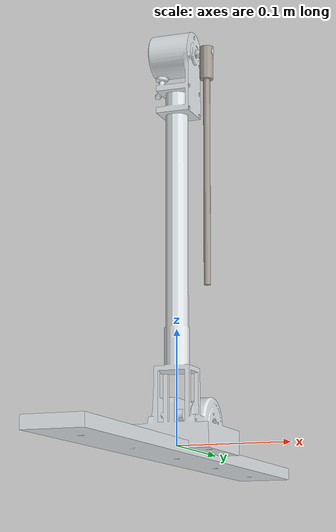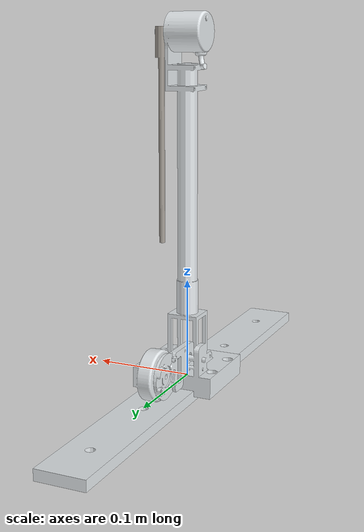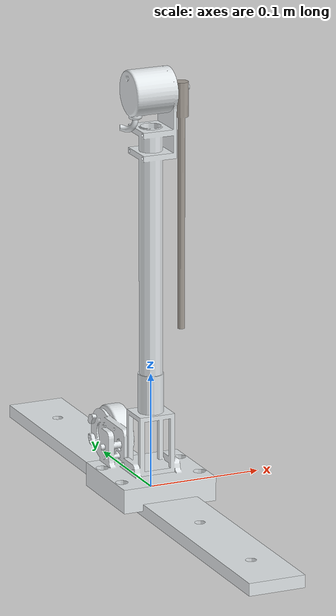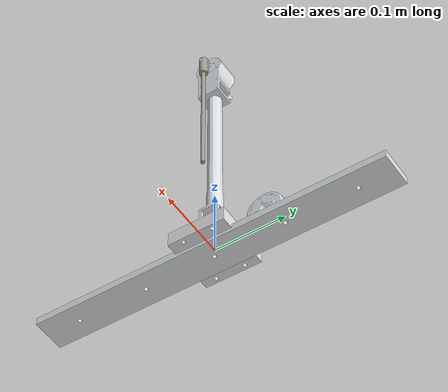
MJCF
<mujoco model="cartpole">

  <compiler angle="radian" meshdir="../meshes/"/>
    <size njmax="500" nconmax="100" />
    <option timestep="0.001" integrator="RK4" gravity="0 0 -9.8">
        <flag contact="enable" energy="disable" gravity="enable"/>
    </option>

    <default>
		<joint armature="0" damping="0.001" limited="true"/>
        <geom contype="0" friction="1 0.1 0.1" rgba="0.7 0.7 0 1"/>
		<tendon/>
        <motor ctrlrange="-3 3"/>
	</default>

  <asset>
    <mesh name="base"  file="base.STL"/>
    <mesh name="slider"  file="slider.STL"/>
    <mesh name="pole"  file="pole.STL"/>
  </asset>

  <worldbody>
    <light diffuse=".5 .5 .5" pos="0 0 3" dir="0 0 -1"/>
    <geom type="mesh" contype="0" conaffinity="0" group="1" density="0" rgba="0.89804 0.91765 0.92941 1" mesh="base"/>
    <geom type="mesh" rgba="0.89804 0.91765 0.92941 1" mesh="base"/>
    <body name="slider">
      <inertial pos="0.00079562 0.0180063 0.107016" quat="0.999327 -0.0341857 -0.0075973 -0.0108732" mass="0.6845" diaginertia="0.0161454 0.0154351 0.00120616"/>
      <joint name="slide" pos="0 0 0" axis="0 -1 0" type="slide" range="-0.15 0.21" />
      <geom type="mesh" contype="0" conaffinity="0" group="1" density="0" rgba="0.89804 0.91765 0.92941 1" mesh="slider"/>
      <geom type="mesh" rgba="0.89804 0.91765 0.92941 1" mesh="slider"/>
      <body name="pole" pos="0.028 0 0.347">
        <inertial pos="0 0 -0.0780584" mass="0.066472" diaginertia="0.00029714 0.00029712 6.4e-07"/>
        <joint name="hinge" pos="0 0 0" axis="1 0 0" damping="0.00" limited="false"/>
        <geom type="mesh" contype="0" conaffinity="0" group="1" density="0" rgba="0.64706 0.61961 0.58824 1" mesh="pole"/>
        <geom type="mesh" rgba="0.64706 0.61961 0.58824 1" mesh="pole"/>
      </body>
    </body>
  </worldbody>
  <actuator>
		<motor joint="slide" name="slide"  gear="1" ctrlrange="-10 10" ctrllimited="true"/>
	</actuator>
    <sensor>
        <jointpos name="jSLp" joint="slide"   noise="0.05"/>
        <jointpos name="jHIp" joint="hinge"   noise="0.05"/>
        <jointvel name="jSLv" joint="slide"   noise="0.05"/>
        <jointvel name="jHIv" joint="hinge"   noise="0.05"/>
    </sensor>
</mujoco>
